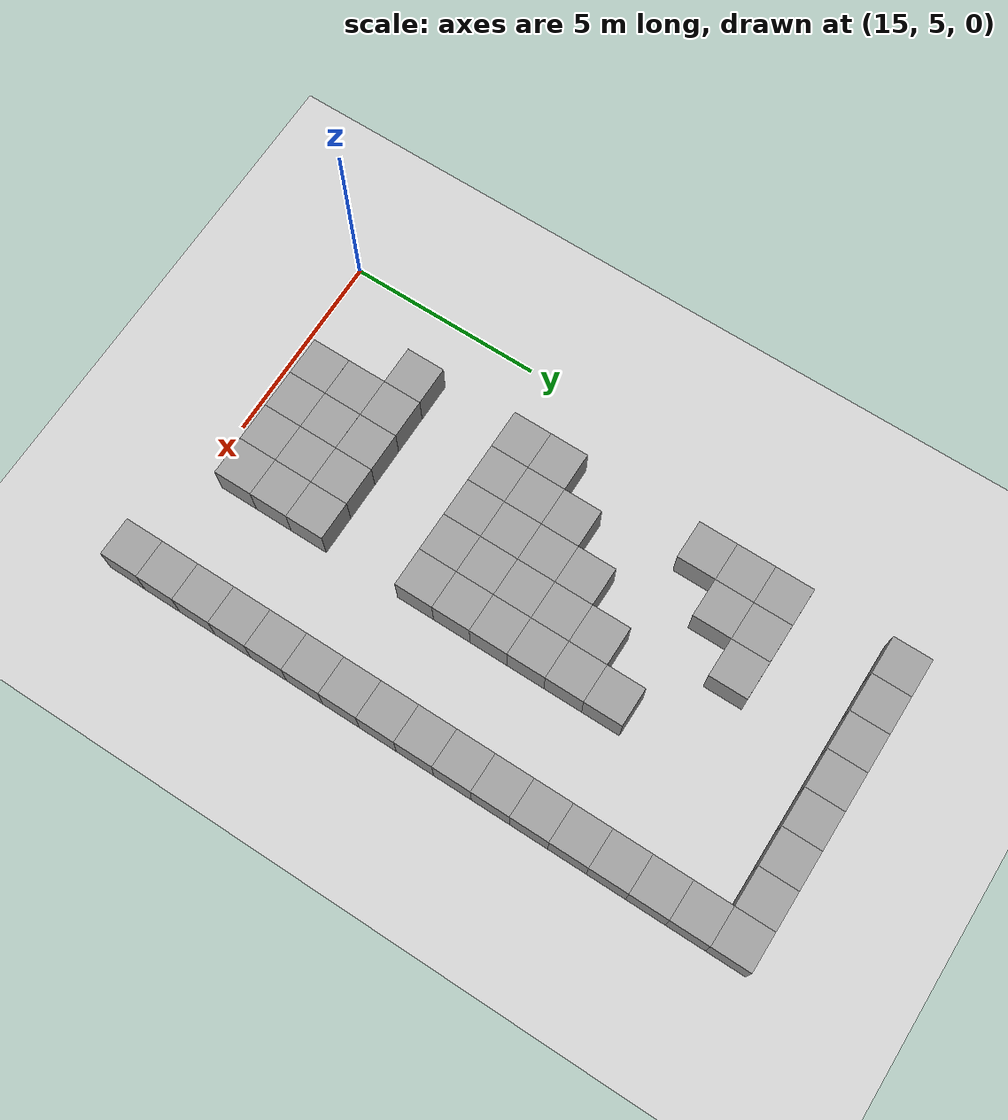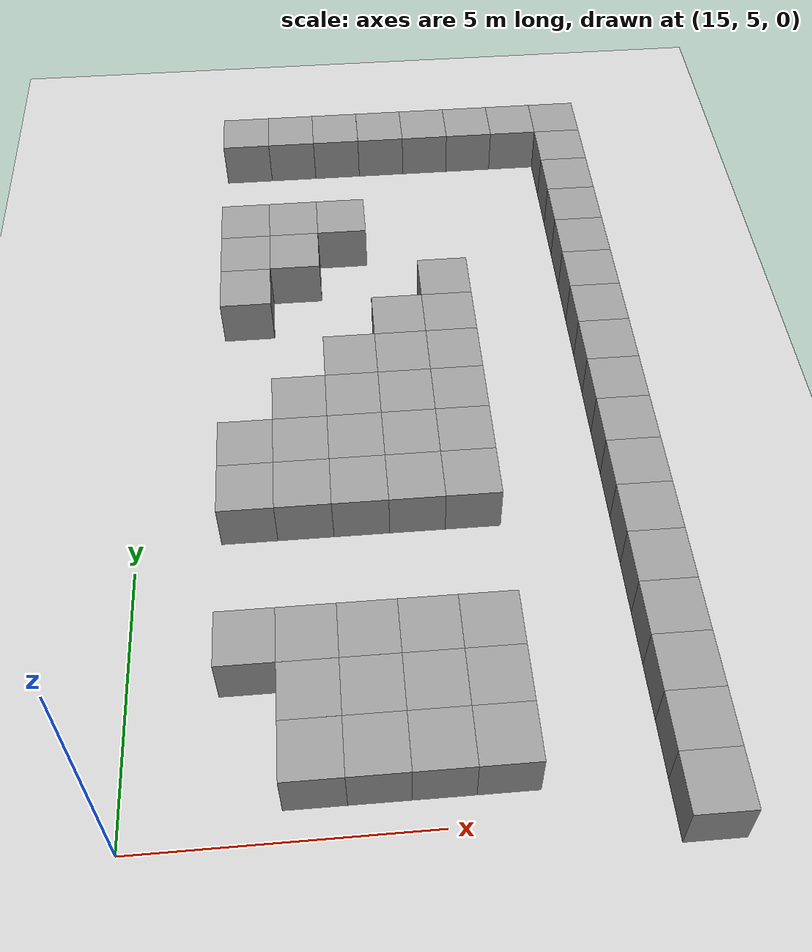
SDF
<sdf version="1.4">
 <world name="default">
  <model name="ground_plane">
   <static>1</static>
   <link name="link">
    <collision name="collision">
     <geometry><plane><normal>0 0 1</normal><size>100 100</size></plane></geometry>
     <surface><friction><ode><mu>100</mu><mu2>50</mu2></ode></friction></surface>
    </collision>
    <visual name="visual">
     <cast_shadows>0</cast_shadows>
     <geometry><plane><normal>0 0 1</normal><size>100 100</size></plane></geometry>
     <material>
      <script><uri>file://media/materials/scripts/gazebo.material</uri><name>Gazebo/Grey</name></script>
     </material>
    </visual>
    <velocity_decay><linear>0</linear><angular>0</angular></velocity_decay>
   </link>
  </model>
  <model name="unit_box_136">
   <pose>17 21 0.5 0 -0 3e-06</pose>
   <static>1</static>
   <link name="link">
    <inertial>
     <mass>1</mass>
     <inertia><ixx>1</ixx><ixy>0</ixy><ixz>0</ixz><iyy>1</iyy><iyz>0</iyz><izz>1</izz></inertia>
    </inertial>
    <collision name="collision"><geometry><box><size>1 1 1</size></box></geometry></collision>
    <visual name="visual">
     <geometry><box><size>1 1 1</size></box></geometry>
     <material>
      <script><uri>file://media/materials/scripts/gazebo.material</uri><name>Gazebo/Grey</name></script>
     </material>
    </visual>
    <velocity_decay><linear>0</linear><angular>0</angular></velocity_decay>
   </link>
   <static>1</static>
  </model>
  <model name="unit_box_137">
   <pose>18 21 0.5 0 -0 3e-06</pose>
   <static>1</static>
   <link name="link">
    <inertial>
     <mass>1</mass>
     <inertia><ixx>1</ixx><ixy>0</ixy><ixz>0</ixz><iyy>1</iyy><iyz>0</iyz><izz>1</izz></inertia>
    </inertial>
    <collision name="collision"><geometry><box><size>1 1 1</size></box></geometry></collision>
    <visual name="visual">
     <geometry><box><size>1 1 1</size></box></geometry>
     <material>
      <script><uri>file://media/materials/scripts/gazebo.material</uri><name>Gazebo/Grey</name></script>
     </material>
    </visual>
    <velocity_decay><linear>0</linear><angular>0</angular></velocity_decay>
   </link>
   <static>1</static>
  </model>
  <model name="unit_box_146">
   <pose>19 21 0.5 0 -0 3e-06</pose>
   <static>1</static>
   <link name="link">
    <inertial>
     <mass>1</mass>
     <inertia><ixx>1</ixx><ixy>0</ixy><ixz>0</ixz><iyy>1</iyy><iyz>0</iyz><izz>1</izz></inertia>
    </inertial>
    <collision name="collision"><geometry><box><size>1 1 1</size></box></geometry></collision>
    <visual name="visual">
     <geometry><box><size>1 1 1</size></box></geometry>
     <material>
      <script><uri>file://media/materials/scripts/gazebo.material</uri><name>Gazebo/Grey</name></script>
     </material>
    </visual>
    <velocity_decay><linear>0</linear><angular>0</angular></velocity_decay>
   </link>
   <static>1</static>
  </model>
  <model name="unit_box_147">
   <pose>20.0003 21 0.5 0 -0 1.4e-05</pose>
   <static>1</static>
   <link name="link">
    <inertial>
     <mass>1</mass>
     <inertia><ixx>1</ixx><ixy>0</ixy><ixz>0</ixz><iyy>1</iyy><iyz>0</iyz><izz>1</izz></inertia>
    </inertial>
    <collision name="collision"><geometry><box><size>1 1 1</size></box></geometry></collision>
    <visual name="visual">
     <geometry><box><size>1 1 1</size></box></geometry>
     <material>
      <script><uri>file://media/materials/scripts/gazebo.material</uri><name>Gazebo/Grey</name></script>
     </material>
    </visual>
    <velocity_decay><linear>0</linear><angular>0</angular></velocity_decay>
   </link>
   <static>1</static>
  </model>
  <model name="unit_box_148">
   <pose>21.0003 21 0.5 0 -0 3.3e-05</pose>
   <static>1</static>
   <link name="link">
    <inertial>
     <mass>1</mass>
     <inertia><ixx>1</ixx><ixy>0</ixy><ixz>0</ixz><iyy>1</iyy><iyz>0</iyz><izz>1</izz></inertia>
    </inertial>
    <collision name="collision"><geometry><box><size>1 1 1</size></box></geometry></collision>
    <visual name="visual">
     <geometry><box><size>1 1 1</size></box></geometry>
     <material>
      <script><uri>file://media/materials/scripts/gazebo.material</uri><name>Gazebo/Grey</name></script>
     </material>
    </visual>
    <velocity_decay><linear>0</linear><angular>0</angular></velocity_decay>
   </link>
   <static>1</static>
  </model>
  <model name="unit_box_150">
   <pose>22.0003 21.0001 0.5 0 -0 7.3e-05</pose>
   <static>1</static>
   <link name="link">
    <inertial>
     <mass>1</mass>
     <inertia><ixx>1</ixx><ixy>0</ixy><ixz>0</ixz><iyy>1</iyy><iyz>0</iyz><izz>1</izz></inertia>
    </inertial>
    <collision name="collision"><geometry><box><size>1 1 1</size></box></geometry></collision>
    <visual name="visual">
     <geometry><box><size>1 1 1</size></box></geometry>
     <material>
      <script><uri>file://media/materials/scripts/gazebo.material</uri><name>Gazebo/Grey</name></script>
     </material>
    </visual>
    <velocity_decay><linear>0</linear><angular>0</angular></velocity_decay>
   </link>
   <static>1</static>
  </model>
  <model name="unit_box_151">
   <pose>23.0004 21.0004 0.5 0 -0 0.000111</pose>
   <static>1</static>
   <link name="link">
    <inertial>
     <mass>1</mass>
     <inertia><ixx>1</ixx><ixy>0</ixy><ixz>0</ixz><iyy>1</iyy><iyz>0</iyz><izz>1</izz></inertia>
    </inertial>
    <collision name="collision"><geometry><box><size>1 1 1</size></box></geometry></collision>
    <visual name="visual">
     <geometry><box><size>1 1 1</size></box></geometry>
     <material>
      <script><uri>file://media/materials/scripts/gazebo.material</uri><name>Gazebo/Grey</name></script>
     </material>
    </visual>
    <velocity_decay><linear>0</linear><angular>0</angular></velocity_decay>
   </link>
   <static>1</static>
  </model>
  <model name="unit_box_152">
   <pose>24.0004 21.0005 0.5 0 -0 4.7e-05</pose>
   <static>1</static>
   <link name="link">
    <inertial>
     <mass>1</mass>
     <inertia><ixx>1</ixx><ixy>0</ixy><ixz>0</ixz><iyy>1</iyy><iyz>0</iyz><izz>1</izz></inertia>
    </inertial>
    <collision name="collision"><geometry><box><size>1 1 1</size></box></geometry></collision>
    <visual name="visual">
     <geometry><box><size>1 1 1</size></box></geometry>
     <material>
      <script><uri>file://media/materials/scripts/gazebo.material</uri><name>Gazebo/Grey</name></script>
     </material>
    </visual>
    <velocity_decay><linear>0</linear><angular>0</angular></velocity_decay>
   </link>
   <static>1</static>
  </model>
  <model name="unit_box_153">
   <pose>24.0001 20.0005 0.5 0 -0 2.5e-05</pose>
   <static>1</static>
   <link name="link">
    <inertial>
     <mass>1</mass>
     <inertia><ixx>1</ixx><ixy>0</ixy><ixz>0</ixz><iyy>1</iyy><iyz>0</iyz><izz>1</izz></inertia>
    </inertial>
    <collision name="collision"><geometry><box><size>1 1 1</size></box></geometry></collision>
    <visual name="visual">
     <geometry><box><size>1 1 1</size></box></geometry>
     <material>
      <script><uri>file://media/materials/scripts/gazebo.material</uri><name>Gazebo/Grey</name></script>
     </material>
    </visual>
    <velocity_decay><linear>0</linear><angular>0</angular></velocity_decay>
   </link>
   <static>1</static>
  </model>
  <model name="unit_box_154">
   <pose>24.0001 19.0005 0.5 0 -0 1.7e-05</pose>
   <static>1</static>
   <link name="link">
    <inertial>
     <mass>1</mass>
     <inertia><ixx>1</ixx><ixy>0</ixy><ixz>0</ixz><iyy>1</iyy><iyz>0</iyz><izz>1</izz></inertia>
    </inertial>
    <collision name="collision"><geometry><box><size>1 1 1</size></box></geometry></collision>
    <visual name="visual">
     <geometry><box><size>1 1 1</size></box></geometry>
     <material>
      <script><uri>file://media/materials/scripts/gazebo.material</uri><name>Gazebo/Grey</name></script>
     </material>
    </visual>
    <velocity_decay><linear>0</linear><angular>0</angular></velocity_decay>
   </link>
   <static>1</static>
  </model>
  <model name="unit_box_155">
   <pose>24.0001 18.0005 0.5 0 -0 1.3e-05</pose>
   <static>1</static>
   <link name="link">
    <inertial>
     <mass>1</mass>
     <inertia><ixx>1</ixx><ixy>0</ixy><ixz>0</ixz><iyy>1</iyy><iyz>0</iyz><izz>1</izz></inertia>
    </inertial>
    <collision name="collision"><geometry><box><size>1 1 1</size></box></geometry></collision>
    <visual name="visual">
     <geometry><box><size>1 1 1</size></box></geometry>
     <material>
      <script><uri>file://media/materials/scripts/gazebo.material</uri><name>Gazebo/Grey</name></script>
     </material>
    </visual>
    <velocity_decay><linear>0</linear><angular>0</angular></velocity_decay>
   </link>
   <static>1</static>
  </model>
  <model name="unit_box_156">
   <pose>24.0001 17.0005 0.5 0 -0 1.4e-05</pose>
   <static>1</static>
   <link name="link">
    <inertial>
     <mass>1</mass>
     <inertia><ixx>1</ixx><ixy>0</ixy><ixz>0</ixz><iyy>1</iyy><iyz>0</iyz><izz>1</izz></inertia>
    </inertial>
    <collision name="collision"><geometry><box><size>1 1 1</size></box></geometry></collision>
    <visual name="visual">
     <geometry><box><size>1 1 1</size></box></geometry>
     <material>
      <script><uri>file://media/materials/scripts/gazebo.material</uri><name>Gazebo/Grey</name></script>
     </material>
    </visual>
    <velocity_decay><linear>0</linear><angular>0</angular></velocity_decay>
   </link>
   <static>1</static>
  </model>
  <model name="unit_box_157">
   <pose>24.0002 16.0005 0.5 0 -0 1.5e-05</pose>
   <static>1</static>
   <link name="link">
    <inertial>
     <mass>1</mass>
     <inertia><ixx>1</ixx><ixy>0</ixy><ixz>0</ixz><iyy>1</iyy><iyz>0</iyz><izz>1</izz></inertia>
    </inertial>
    <collision name="collision"><geometry><box><size>1 1 1</size></box></geometry></collision>
    <visual name="visual">
     <geometry><box><size>1 1 1</size></box></geometry>
     <material>
      <script><uri>file://media/materials/scripts/gazebo.material</uri><name>Gazebo/Grey</name></script>
     </material>
    </visual>
    <velocity_decay><linear>0</linear><angular>0</angular></velocity_decay>
   </link>
   <static>1</static>
  </model>
  <model name="unit_box_158">
   <pose>24.0001 15.0005 0.5 0 -0 1.7e-05</pose>
   <static>1</static>
   <link name="link">
    <inertial>
     <mass>1</mass>
     <inertia><ixx>1</ixx><ixy>0</ixy><ixz>0</ixz><iyy>1</iyy><iyz>0</iyz><izz>1</izz></inertia>
    </inertial>
    <collision name="collision"><geometry><box><size>1 1 1</size></box></geometry></collision>
    <visual name="visual">
     <geometry><box><size>1 1 1</size></box></geometry>
     <material>
      <script><uri>file://media/materials/scripts/gazebo.material</uri><name>Gazebo/Grey</name></script>
     </material>
    </visual>
    <velocity_decay><linear>0</linear><angular>0</angular></velocity_decay>
   </link>
   <static>1</static>
  </model>
  <model name="unit_box_159">
   <pose>24 14.0005 0.5 0 -0 2e-05</pose>
   <static>1</static>
   <link name="link">
    <inertial>
     <mass>1</mass>
     <inertia><ixx>1</ixx><ixy>0</ixy><ixz>0</ixz><iyy>1</iyy><iyz>0</iyz><izz>1</izz></inertia>
    </inertial>
    <collision name="collision"><geometry><box><size>1 1 1</size></box></geometry></collision>
    <visual name="visual">
     <geometry><box><size>1 1 1</size></box></geometry>
     <material>
      <script><uri>file://media/materials/scripts/gazebo.material</uri><name>Gazebo/Grey</name></script>
     </material>
    </visual>
    <velocity_decay><linear>0</linear><angular>0</angular></velocity_decay>
   </link>
   <static>1</static>
  </model>
  <model name="unit_box_160">
   <pose>24 13.0005 0.5 0 -0 2.1e-05</pose>
   <static>1</static>
   <link name="link">
    <inertial>
     <mass>1</mass>
     <inertia><ixx>1</ixx><ixy>0</ixy><ixz>0</ixz><iyy>1</iyy><iyz>0</iyz><izz>1</izz></inertia>
    </inertial>
    <collision name="collision"><geometry><box><size>1 1 1</size></box></geometry></collision>
    <visual name="visual">
     <geometry><box><size>1 1 1</size></box></geometry>
     <material>
      <script><uri>file://media/materials/scripts/gazebo.material</uri><name>Gazebo/Grey</name></script>
     </material>
    </visual>
    <velocity_decay><linear>0</linear><angular>0</angular></velocity_decay>
   </link>
   <static>1</static>
  </model>
  <model name="unit_box_161">
   <pose>24.0001 12.0005 0.5 0 -0 2.2e-05</pose>
   <static>1</static>
   <link name="link">
    <inertial>
     <mass>1</mass>
     <inertia><ixx>1</ixx><ixy>0</ixy><ixz>0</ixz><iyy>1</iyy><iyz>0</iyz><izz>1</izz></inertia>
    </inertial>
    <collision name="collision"><geometry><box><size>1 1 1</size></box></geometry></collision>
    <visual name="visual">
     <geometry><box><size>1 1 1</size></box></geometry>
     <material>
      <script><uri>file://media/materials/scripts/gazebo.material</uri><name>Gazebo/Grey</name></script>
     </material>
    </visual>
    <velocity_decay><linear>0</linear><angular>0</angular></velocity_decay>
   </link>
   <static>1</static>
  </model>
  <model name="unit_box_162">
   <pose>24.0002 11.0004 0.5 0 -0 4e-05</pose>
   <static>1</static>
   <link name="link">
    <inertial>
     <mass>1</mass>
     <inertia><ixx>1</ixx><ixy>0</ixy><ixz>0</ixz><iyy>1</iyy><iyz>0</iyz><izz>1</izz></inertia>
    </inertial>
    <collision name="collision"><geometry><box><size>1 1 1</size></box></geometry></collision>
    <visual name="visual">
     <geometry><box><size>1 1 1</size></box></geometry>
     <material>
      <script><uri>file://media/materials/scripts/gazebo.material</uri><name>Gazebo/Grey</name></script>
     </material>
    </visual>
    <velocity_decay><linear>0</linear><angular>0</angular></velocity_decay>
   </link>
   <static>1</static>
  </model>
  <model name="unit_box_188">
   <pose>24.0001 10.0004 0.5 0 -0 3.9e-05</pose>
   <static>1</static>
   <link name="link">
    <inertial>
     <mass>1</mass>
     <inertia><ixx>1</ixx><ixy>0</ixy><ixz>0</ixz><iyy>1</iyy><iyz>0</iyz><izz>1</izz></inertia>
    </inertial>
    <collision name="collision"><geometry><box><size>1 1 1</size></box></geometry></collision>
    <visual name="visual">
     <geometry><box><size>1 1 1</size></box></geometry>
     <material>
      <script><uri>file://media/materials/scripts/gazebo.material</uri><name>Gazebo/Grey</name></script>
     </material>
    </visual>
    <velocity_decay><linear>0</linear><angular>0</angular></velocity_decay>
   </link>
   <static>1</static>
  </model>
  <model name="unit_box_189">
   <pose>24.0001 9.00043 0.5 0 -0 4.6e-05</pose>
   <static>1</static>
   <link name="link">
    <inertial>
     <mass>1</mass>
     <inertia><ixx>1</ixx><ixy>0</ixy><ixz>0</ixz><iyy>1</iyy><iyz>0</iyz><izz>1</izz></inertia>
    </inertial>
    <collision name="collision"><geometry><box><size>1 1 1</size></box></geometry></collision>
    <visual name="visual">
     <geometry><box><size>1 1 1</size></box></geometry>
     <material>
      <script><uri>file://media/materials/scripts/gazebo.material</uri><name>Gazebo/Grey</name></script>
     </material>
    </visual>
    <velocity_decay><linear>0</linear><angular>0</angular></velocity_decay>
   </link>
   <static>1</static>
  </model>
  <model name="unit_box_190">
   <pose>24.0001 8.00042 0.5 0 -0 3.9e-05</pose>
   <static>1</static>
   <link name="link">
    <inertial>
     <mass>1</mass>
     <inertia><ixx>1</ixx><ixy>0</ixy><ixz>0</ixz><iyy>1</iyy><iyz>0</iyz><izz>1</izz></inertia>
    </inertial>
    <collision name="collision"><geometry><box><size>1 1 1</size></box></geometry></collision>
    <visual name="visual">
     <geometry><box><size>1 1 1</size></box></geometry>
     <material>
      <script><uri>file://media/materials/scripts/gazebo.material</uri><name>Gazebo/Grey</name></script>
     </material>
    </visual>
    <velocity_decay><linear>0</linear><angular>0</angular></velocity_decay>
   </link>
   <static>1</static>
  </model>
  <model name="unit_box_191">
   <pose>24.0002 7.00042 0.5 0 -0 3.8e-05</pose>
   <static>1</static>
   <link name="link">
    <inertial>
     <mass>1</mass>
     <inertia><ixx>1</ixx><ixy>0</ixy><ixz>0</ixz><iyy>1</iyy><iyz>0</iyz><izz>1</izz></inertia>
    </inertial>
    <collision name="collision"><geometry><box><size>1 1 1</size></box></geometry></collision>
    <visual name="visual">
     <geometry><box><size>1 1 1</size></box></geometry>
     <material>
      <script><uri>file://media/materials/scripts/gazebo.material</uri><name>Gazebo/Grey</name></script>
     </material>
    </visual>
    <velocity_decay><linear>0</linear><angular>0</angular></velocity_decay>
   </link>
   <static>1</static>
  </model>
  <model name="unit_box_192">
   <pose>24.0014 6.00042 0.5 0 -0 3.8e-05</pose>
   <static>1</static>
   <link name="link">
    <inertial>
     <mass>1</mass>
     <inertia><ixx>1</ixx><ixy>0</ixy><ixz>0</ixz><iyy>1</iyy><iyz>0</iyz><izz>1</izz></inertia>
    </inertial>
    <collision name="collision"><geometry><box><size>1 1 1</size></box></geometry></collision>
    <visual name="visual">
     <geometry><box><size>1 1 1</size></box></geometry>
     <material>
      <script><uri>file://media/materials/scripts/gazebo.material</uri><name>Gazebo/Grey</name></script>
     </material>
    </visual>
    <velocity_decay><linear>0</linear><angular>0</angular></velocity_decay>
   </link>
   <static>1</static>
  </model>
  <model name="unit_box_194">
   <pose>24.0008 5.00042 0.5 0 -0 3.8e-05</pose>
   <static>1</static>
   <link name="link">
    <inertial>
     <mass>1</mass>
     <inertia><ixx>1</ixx><ixy>0</ixy><ixz>0</ixz><iyy>1</iyy><iyz>0</iyz><izz>1</izz></inertia>
    </inertial>
    <collision name="collision"><geometry><box><size>1 1 1</size></box></geometry></collision>
    <visual name="visual">
     <geometry><box><size>1 1 1</size></box></geometry>
     <material>
      <script><uri>file://media/materials/scripts/gazebo.material</uri><name>Gazebo/Grey</name></script>
     </material>
    </visual>
    <velocity_decay><linear>0</linear><angular>0</angular></velocity_decay>
   </link>
   <static>1</static>
  </model>
  <model name="unit_box_299">
   <pose>21 5.99999 0.5 0 0 -4e-06</pose>
   <link name="link">
    <inertial>
     <mass>1</mass>
     <inertia><ixx>1</ixx><ixy>0</ixy><ixz>0</ixz><iyy>1</iyy><iyz>0</iyz><izz>1</izz></inertia>
    </inertial>
    <collision name="collision"><geometry><box><size>1 1 1</size></box></geometry></collision>
    <visual name="visual">
     <geometry><box><size>1 1 1</size></box></geometry>
     <material>
      <script><uri>file://media/materials/scripts/gazebo.material</uri><name>Gazebo/Grey</name></script>
     </material>
    </visual>
    <velocity_decay><linear>0</linear><angular>0</angular></velocity_decay>
   </link>
   <static>1</static>
  </model>
  <model name="unit_box_300">
   <pose>21 7 0.5 0 0 -7e-06</pose>
   <link name="link">
    <inertial>
     <mass>1</mass>
     <inertia><ixx>1</ixx><ixy>0</ixy><ixz>0</ixz><iyy>1</iyy><iyz>0</iyz><izz>1</izz></inertia>
    </inertial>
    <collision name="collision"><geometry><box><size>1 1 1</size></box></geometry></collision>
    <visual name="visual">
     <geometry><box><size>1 1 1</size></box></geometry>
     <material>
      <script><uri>file://media/materials/scripts/gazebo.material</uri><name>Gazebo/Grey</name></script>
     </material>
    </visual>
    <velocity_decay><linear>0</linear><angular>0</angular></velocity_decay>
   </link>
   <static>1</static>
  </model>
  <model name="unit_box_301">
   <pose>21 8.00001 0.5 0 0 -3e-06</pose>
   <link name="link">
    <inertial>
     <mass>1</mass>
     <inertia><ixx>1</ixx><ixy>0</ixy><ixz>0</ixz><iyy>1</iyy><iyz>0</iyz><izz>1</izz></inertia>
    </inertial>
    <collision name="collision"><geometry><box><size>1 1 1</size></box></geometry></collision>
    <visual name="visual">
     <geometry><box><size>1 1 1</size></box></geometry>
     <material>
      <script><uri>file://media/materials/scripts/gazebo.material</uri><name>Gazebo/Grey</name></script>
     </material>
    </visual>
    <velocity_decay><linear>0</linear><angular>0</angular></velocity_decay>
   </link>
   <static>1</static>
  </model>
  <model name="unit_box_302">
   <pose>20 8.00001 0.5 0 0 -3e-06</pose>
   <link name="link">
    <inertial>
     <mass>1</mass>
     <inertia><ixx>1</ixx><ixy>0</ixy><ixz>0</ixz><iyy>1</iyy><iyz>0</iyz><izz>1</izz></inertia>
    </inertial>
    <collision name="collision"><geometry><box><size>1 1 1</size></box></geometry></collision>
    <visual name="visual">
     <geometry><box><size>1 1 1</size></box></geometry>
     <material>
      <script><uri>file://media/materials/scripts/gazebo.material</uri><name>Gazebo/Grey</name></script>
     </material>
    </visual>
    <velocity_decay><linear>0</linear><angular>0</angular></velocity_decay>
   </link>
   <static>1</static>
  </model>
  <model name="unit_box_303">
   <pose>20 7 0.5 0 0 -3e-06</pose>
   <link name="link">
    <inertial>
     <mass>1</mass>
     <inertia><ixx>1</ixx><ixy>0</ixy><ixz>0</ixz><iyy>1</iyy><iyz>0</iyz><izz>1</izz></inertia>
    </inertial>
    <collision name="collision"><geometry><box><size>1 1 1</size></box></geometry></collision>
    <visual name="visual">
     <geometry><box><size>1 1 1</size></box></geometry>
     <material>
      <script><uri>file://media/materials/scripts/gazebo.material</uri><name>Gazebo/Grey</name></script>
     </material>
    </visual>
    <velocity_decay><linear>0</linear><angular>0</angular></velocity_decay>
   </link>
   <static>1</static>
  </model>
  <model name="unit_box_304">
   <pose>20 6 0.5 0 0 -4e-06</pose>
   <link name="link">
    <inertial>
     <mass>1</mass>
     <inertia><ixx>1</ixx><ixy>0</ixy><ixz>0</ixz><iyy>1</iyy><iyz>0</iyz><izz>1</izz></inertia>
    </inertial>
    <collision name="collision"><geometry><box><size>1 1 1</size></box></geometry></collision>
    <visual name="visual">
     <geometry><box><size>1 1 1</size></box></geometry>
     <material>
      <script><uri>file://media/materials/scripts/gazebo.material</uri><name>Gazebo/Grey</name></script>
     </material>
    </visual>
    <velocity_decay><linear>0</linear><angular>0</angular></velocity_decay>
   </link>
   <static>1</static>
  </model>
  <model name="unit_box_305">
   <pose>19 6.00001 0.5 0 0 -1e-06</pose>
   <link name="link">
    <inertial>
     <mass>1</mass>
     <inertia><ixx>1</ixx><ixy>0</ixy><ixz>0</ixz><iyy>1</iyy><iyz>0</iyz><izz>1</izz></inertia>
    </inertial>
    <collision name="collision"><geometry><box><size>1 1 1</size></box></geometry></collision>
    <visual name="visual">
     <geometry><box><size>1 1 1</size></box></geometry>
     <material>
      <script><uri>file://media/materials/scripts/gazebo.material</uri><name>Gazebo/Grey</name></script>
     </material>
    </visual>
    <velocity_decay><linear>0</linear><angular>0</angular></velocity_decay>
   </link>
   <static>1</static>
  </model>
  <model name="unit_box_306">
   <pose>18 6 0.5 0 -0 0</pose>
   <link name="link">
    <inertial>
     <mass>1</mass>
     <inertia><ixx>1</ixx><ixy>0</ixy><ixz>0</ixz><iyy>1</iyy><iyz>0</iyz><izz>1</izz></inertia>
    </inertial>
    <collision name="collision"><geometry><box><size>1 1 1</size></box></geometry></collision>
    <visual name="visual">
     <geometry><box><size>1 1 1</size></box></geometry>
     <material>
      <script><uri>file://media/materials/scripts/gazebo.material</uri><name>Gazebo/Grey</name></script>
     </material>
    </visual>
    <velocity_decay><linear>0</linear><angular>0</angular></velocity_decay>
   </link>
   <static>1</static>
  </model>
  <model name="unit_box_378">
   <pose>17 16 0.5 0 -0 1e-06</pose>
   <link name="link">
    <inertial>
     <mass>1</mass>
     <inertia><ixx>1</ixx><ixy>0</ixy><ixz>0</ixz><iyy>1</iyy><iyz>0</iyz><izz>1</izz></inertia>
    </inertial>
    <collision name="collision"><geometry><box><size>1 1 1</size></box></geometry></collision>
    <visual name="visual">
     <geometry><box><size>1 1 1</size></box></geometry>
     <material>
      <script><uri>file://media/materials/scripts/gazebo.material</uri><name>Gazebo/Grey</name></script>
     </material>
    </visual>
    <velocity_decay><linear>0</linear><angular>0</angular></velocity_decay>
   </link>
   <static>1</static>
  </model>
  <model name="unit_box_379">
   <pose>17 17 0.5 0 -0 0</pose>
   <link name="link">
    <inertial>
     <mass>1</mass>
     <inertia><ixx>1</ixx><ixy>0</ixy><ixz>0</ixz><iyy>1</iyy><iyz>0</iyz><izz>1</izz></inertia>
    </inertial>
    <collision name="collision"><geometry><box><size>1 1 1</size></box></geometry></collision>
    <visual name="visual">
     <geometry><box><size>1 1 1</size></box></geometry>
     <material>
      <script><uri>file://media/materials/scripts/gazebo.material</uri><name>Gazebo/Grey</name></script>
     </material>
    </visual>
    <velocity_decay><linear>0</linear><angular>0</angular></velocity_decay>
   </link>
   <static>1</static>
  </model>
  <model name="unit_box_380">
   <pose>17 18 0.5 0 -0 2e-06</pose>
   <link name="link">
    <inertial>
     <mass>1</mass>
     <inertia><ixx>1</ixx><ixy>0</ixy><ixz>0</ixz><iyy>1</iyy><iyz>0</iyz><izz>1</izz></inertia>
    </inertial>
    <collision name="collision"><geometry><box><size>1 1 1</size></box></geometry></collision>
    <visual name="visual">
     <geometry><box><size>1 1 1</size></box></geometry>
     <material>
      <script><uri>file://media/materials/scripts/gazebo.material</uri><name>Gazebo/Grey</name></script>
     </material>
    </visual>
    <velocity_decay><linear>0</linear><angular>0</angular></velocity_decay>
   </link>
   <static>1</static>
  </model>
  <model name="unit_box_381">
   <pose>18 17 0.5 0 -0 4e-06</pose>
   <link name="link">
    <inertial>
     <mass>1</mass>
     <inertia><ixx>1</ixx><ixy>0</ixy><ixz>0</ixz><iyy>1</iyy><iyz>0</iyz><izz>1</izz></inertia>
    </inertial>
    <collision name="collision"><geometry><box><size>1 1 1</size></box></geometry></collision>
    <visual name="visual">
     <geometry><box><size>1 1 1</size></box></geometry>
     <material>
      <script><uri>file://media/materials/scripts/gazebo.material</uri><name>Gazebo/Grey</name></script>
     </material>
    </visual>
    <velocity_decay><linear>0</linear><angular>0</angular></velocity_decay>
   </link>
   <static>1</static>
  </model>
  <model name="unit_box_382">
   <pose>18 18 0.5 0 -1e-06 5e-06</pose>
   <link name="link">
    <inertial>
     <mass>1</mass>
     <inertia><ixx>1</ixx><ixy>0</ixy><ixz>0</ixz><iyy>1</iyy><iyz>0</iyz><izz>1</izz></inertia>
    </inertial>
    <collision name="collision"><geometry><box><size>1 1 1</size></box></geometry></collision>
    <visual name="visual">
     <geometry><box><size>1 1 1</size></box></geometry>
     <material>
      <script><uri>file://media/materials/scripts/gazebo.material</uri><name>Gazebo/Grey</name></script>
     </material>
    </visual>
    <velocity_decay><linear>0</linear><angular>0</angular></velocity_decay>
   </link>
   <static>1</static>
  </model>
  <model name="unit_box_383">
   <pose>19 18 0.5 0 -0 5e-06</pose>
   <link name="link">
    <inertial>
     <mass>1</mass>
     <inertia><ixx>1</ixx><ixy>0</ixy><ixz>0</ixz><iyy>1</iyy><iyz>0</iyz><izz>1</izz></inertia>
    </inertial>
    <collision name="collision"><geometry><box><size>1 1 1</size></box></geometry></collision>
    <visual name="visual">
     <geometry><box><size>1 1 1</size></box></geometry>
     <material>
      <script><uri>file://media/materials/scripts/gazebo.material</uri><name>Gazebo/Grey</name></script>
     </material>
    </visual>
    <velocity_decay><linear>0</linear><angular>0</angular></velocity_decay>
   </link>
   <static>1</static>
  </model>
  <model name="unit_box_384">
   <pose>21 16 0.5 0 -0 1e-06</pose>
   <link name="link">
    <inertial>
     <mass>1</mass>
     <inertia><ixx>1</ixx><ixy>0</ixy><ixz>0</ixz><iyy>1</iyy><iyz>0</iyz><izz>1</izz></inertia>
    </inertial>
    <collision name="collision"><geometry><box><size>1 1 1</size></box></geometry></collision>
    <visual name="visual">
     <geometry><box><size>1 1 1</size></box></geometry>
     <material>
      <script><uri>file://media/materials/scripts/gazebo.material</uri><name>Gazebo/Grey</name></script>
     </material>
    </visual>
    <velocity_decay><linear>0</linear><angular>0</angular></velocity_decay>
   </link>
   <static>1</static>
  </model>
  <model name="unit_box_385">
   <pose>21 15 0.5 0 -0 1e-06</pose>
   <link name="link">
    <inertial>
     <mass>1</mass>
     <inertia><ixx>1</ixx><ixy>0</ixy><ixz>0</ixz><iyy>1</iyy><iyz>0</iyz><izz>1</izz></inertia>
    </inertial>
    <collision name="collision"><geometry><box><size>1 1 1</size></box></geometry></collision>
    <visual name="visual">
     <geometry><box><size>1 1 1</size></box></geometry>
     <material>
      <script><uri>file://media/materials/scripts/gazebo.material</uri><name>Gazebo/Grey</name></script>
     </material>
    </visual>
    <velocity_decay><linear>0</linear><angular>0</angular></velocity_decay>
   </link>
   <static>1</static>
  </model>
  <model name="unit_box_386">
   <pose>21 14 0.5 0 -0 2e-06</pose>
   <link name="link">
    <inertial>
     <mass>1</mass>
     <inertia><ixx>1</ixx><ixy>0</ixy><ixz>0</ixz><iyy>1</iyy><iyz>0</iyz><izz>1</izz></inertia>
    </inertial>
    <collision name="collision"><geometry><box><size>1 1 1</size></box></geometry></collision>
    <visual name="visual">
     <geometry><box><size>1 1 1</size></box></geometry>
     <material>
      <script><uri>file://media/materials/scripts/gazebo.material</uri><name>Gazebo/Grey</name></script>
     </material>
    </visual>
    <velocity_decay><linear>0</linear><angular>0</angular></velocity_decay>
   </link>
   <static>1</static>
  </model>
  <model name="unit_box_387">
   <pose>21 13 0.5 0 -0 1e-06</pose>
   <link name="link">
    <inertial>
     <mass>1</mass>
     <inertia><ixx>1</ixx><ixy>0</ixy><ixz>0</ixz><iyy>1</iyy><iyz>0</iyz><izz>1</izz></inertia>
    </inertial>
    <collision name="collision"><geometry><box><size>1 1 1</size></box></geometry></collision>
    <visual name="visual">
     <geometry><box><size>1 1 1</size></box></geometry>
     <material>
      <script><uri>file://media/materials/scripts/gazebo.material</uri><name>Gazebo/Grey</name></script>
     </material>
    </visual>
    <velocity_decay><linear>0</linear><angular>0</angular></velocity_decay>
   </link>
   <static>1</static>
  </model>
  <model name="unit_box_388">
   <pose>21 12 0.5 0 -0 3e-06</pose>
   <link name="link">
    <inertial>
     <mass>1</mass>
     <inertia><ixx>1</ixx><ixy>0</ixy><ixz>0</ixz><iyy>1</iyy><iyz>0</iyz><izz>1</izz></inertia>
    </inertial>
    <collision name="collision"><geometry><box><size>1 1 1</size></box></geometry></collision>
    <visual name="visual">
     <geometry><box><size>1 1 1</size></box></geometry>
     <material>
      <script><uri>file://media/materials/scripts/gazebo.material</uri><name>Gazebo/Grey</name></script>
     </material>
    </visual>
    <velocity_decay><linear>0</linear><angular>0</angular></velocity_decay>
   </link>
   <static>1</static>
  </model>
  <model name="unit_box_389">
   <pose>21 11 0.5 0 -0 3e-06</pose>
   <link name="link">
    <inertial>
     <mass>1</mass>
     <inertia><ixx>1</ixx><ixy>0</ixy><ixz>0</ixz><iyy>1</iyy><iyz>0</iyz><izz>1</izz></inertia>
    </inertial>
    <collision name="collision"><geometry><box><size>1 1 1</size></box></geometry></collision>
    <visual name="visual">
     <geometry><box><size>1 1 1</size></box></geometry>
     <material>
      <script><uri>file://media/materials/scripts/gazebo.material</uri><name>Gazebo/Grey</name></script>
     </material>
    </visual>
    <velocity_decay><linear>0</linear><angular>0</angular></velocity_decay>
   </link>
   <static>1</static>
  </model>
  <model name="unit_box_390">
   <pose>20 11 0.5 0 -0 3e-06</pose>
   <link name="link">
    <inertial>
     <mass>1</mass>
     <inertia><ixx>1</ixx><ixy>0</ixy><ixz>0</ixz><iyy>1</iyy><iyz>0</iyz><izz>1</izz></inertia>
    </inertial>
    <collision name="collision"><geometry><box><size>1 1 1</size></box></geometry></collision>
    <visual name="visual">
     <geometry><box><size>1 1 1</size></box></geometry>
     <material>
      <script><uri>file://media/materials/scripts/gazebo.material</uri><name>Gazebo/Grey</name></script>
     </material>
    </visual>
    <velocity_decay><linear>0</linear><angular>0</angular></velocity_decay>
   </link>
   <static>1</static>
  </model>
  <model name="unit_box_391">
   <pose>20 12 0.5 0 -0 3e-06</pose>
   <link name="link">
    <inertial>
     <mass>1</mass>
     <inertia><ixx>1</ixx><ixy>0</ixy><ixz>0</ixz><iyy>1</iyy><iyz>0</iyz><izz>1</izz></inertia>
    </inertial>
    <collision name="collision"><geometry><box><size>1 1 1</size></box></geometry></collision>
    <visual name="visual">
     <geometry><box><size>1 1 1</size></box></geometry>
     <material>
      <script><uri>file://media/materials/scripts/gazebo.material</uri><name>Gazebo/Grey</name></script>
     </material>
    </visual>
    <velocity_decay><linear>0</linear><angular>0</angular></velocity_decay>
   </link>
   <static>1</static>
  </model>
  <model name="unit_box_392">
   <pose>20 13 0.5 0 -0 1e-06</pose>
   <link name="link">
    <inertial>
     <mass>1</mass>
     <inertia><ixx>1</ixx><ixy>0</ixy><ixz>0</ixz><iyy>1</iyy><iyz>0</iyz><izz>1</izz></inertia>
    </inertial>
    <collision name="collision"><geometry><box><size>1 1 1</size></box></geometry></collision>
    <visual name="visual">
     <geometry><box><size>1 1 1</size></box></geometry>
     <material>
      <script><uri>file://media/materials/scripts/gazebo.material</uri><name>Gazebo/Grey</name></script>
     </material>
    </visual>
    <velocity_decay><linear>0</linear><angular>0</angular></velocity_decay>
   </link>
   <static>1</static>
  </model>
  <model name="unit_box_393">
   <pose>20 14 0.5 0 -0 1e-06</pose>
   <link name="link">
    <inertial>
     <mass>1</mass>
     <inertia><ixx>1</ixx><ixy>0</ixy><ixz>0</ixz><iyy>1</iyy><iyz>0</iyz><izz>1</izz></inertia>
    </inertial>
    <collision name="collision"><geometry><box><size>1 1 1</size></box></geometry></collision>
    <visual name="visual">
     <geometry><box><size>1 1 1</size></box></geometry>
     <material>
      <script><uri>file://media/materials/scripts/gazebo.material</uri><name>Gazebo/Grey</name></script>
     </material>
    </visual>
    <velocity_decay><linear>0</linear><angular>0</angular></velocity_decay>
   </link>
   <static>1</static>
  </model>
  <model name="unit_box_394">
   <pose>20 15 0.5 0 -0 1e-06</pose>
   <link name="link">
    <inertial>
     <mass>1</mass>
     <inertia><ixx>1</ixx><ixy>0</ixy><ixz>0</ixz><iyy>1</iyy><iyz>0</iyz><izz>1</izz></inertia>
    </inertial>
    <collision name="collision"><geometry><box><size>1 1 1</size></box></geometry></collision>
    <visual name="visual">
     <geometry><box><size>1 1 1</size></box></geometry>
     <material>
      <script><uri>file://media/materials/scripts/gazebo.material</uri><name>Gazebo/Grey</name></script>
     </material>
    </visual>
    <velocity_decay><linear>0</linear><angular>0</angular></velocity_decay>
   </link>
   <static>1</static>
  </model>
  <model name="unit_box_395">
   <pose>19 14 0.5 0 -0 5e-06</pose>
   <link name="link">
    <inertial>
     <mass>1</mass>
     <inertia><ixx>1</ixx><ixy>0</ixy><ixz>0</ixz><iyy>1</iyy><iyz>0</iyz><izz>1</izz></inertia>
    </inertial>
    <collision name="collision"><geometry><box><size>1 1 1</size></box></geometry></collision>
    <visual name="visual">
     <geometry><box><size>1 1 1</size></box></geometry>
     <material>
      <script><uri>file://media/materials/scripts/gazebo.material</uri><name>Gazebo/Grey</name></script>
     </material>
    </visual>
    <velocity_decay><linear>0</linear><angular>0</angular></velocity_decay>
   </link>
   <static>1</static>
  </model>
  <model name="unit_box_396">
   <pose>19 13 0.5 0 -0 2e-06</pose>
   <link name="link">
    <inertial>
     <mass>1</mass>
     <inertia><ixx>1</ixx><ixy>0</ixy><ixz>0</ixz><iyy>1</iyy><iyz>0</iyz><izz>1</izz></inertia>
    </inertial>
    <collision name="collision"><geometry><box><size>1 1 1</size></box></geometry></collision>
    <visual name="visual">
     <geometry><box><size>1 1 1</size></box></geometry>
     <material>
      <script><uri>file://media/materials/scripts/gazebo.material</uri><name>Gazebo/Grey</name></script>
     </material>
    </visual>
    <velocity_decay><linear>0</linear><angular>0</angular></velocity_decay>
   </link>
   <static>1</static>
  </model>
  <model name="unit_box_397">
   <pose>19 12 0.5 0 -0 1e-06</pose>
   <link name="link">
    <inertial>
     <mass>1</mass>
     <inertia><ixx>1</ixx><ixy>0</ixy><ixz>0</ixz><iyy>1</iyy><iyz>0</iyz><izz>1</izz></inertia>
    </inertial>
    <collision name="collision"><geometry><box><size>1 1 1</size></box></geometry></collision>
    <visual name="visual">
     <geometry><box><size>1 1 1</size></box></geometry>
     <material>
      <script><uri>file://media/materials/scripts/gazebo.material</uri><name>Gazebo/Grey</name></script>
     </material>
    </visual>
    <velocity_decay><linear>0</linear><angular>0</angular></velocity_decay>
   </link>
   <static>1</static>
  </model>
  <model name="unit_box_398">
   <pose>19 11 0.5 0 -0 2e-06</pose>
   <link name="link">
    <inertial>
     <mass>1</mass>
     <inertia><ixx>1</ixx><ixy>0</ixy><ixz>0</ixz><iyy>1</iyy><iyz>0</iyz><izz>1</izz></inertia>
    </inertial>
    <collision name="collision"><geometry><box><size>1 1 1</size></box></geometry></collision>
    <visual name="visual">
     <geometry><box><size>1 1 1</size></box></geometry>
     <material>
      <script><uri>file://media/materials/scripts/gazebo.material</uri><name>Gazebo/Grey</name></script>
     </material>
    </visual>
    <velocity_decay><linear>0</linear><angular>0</angular></velocity_decay>
   </link>
   <static>1</static>
  </model>
  <model name="unit_box_399">
   <pose>18 13 0.5 0 -0 2e-06</pose>
   <link name="link">
    <inertial>
     <mass>1</mass>
     <inertia><ixx>1</ixx><ixy>0</ixy><ixz>0</ixz><iyy>1</iyy><iyz>0</iyz><izz>1</izz></inertia>
    </inertial>
    <collision name="collision"><geometry><box><size>1 1 1</size></box></geometry></collision>
    <visual name="visual">
     <geometry><box><size>1 1 1</size></box></geometry>
     <material>
      <script><uri>file://media/materials/scripts/gazebo.material</uri><name>Gazebo/Grey</name></script>
     </material>
    </visual>
    <velocity_decay><linear>0</linear><angular>0</angular></velocity_decay>
   </link>
   <static>1</static>
  </model>
  <model name="unit_box_400">
   <pose>18 12 0.5 0 0 -1e-06</pose>
   <link name="link">
    <inertial>
     <mass>1</mass>
     <inertia><ixx>1</ixx><ixy>0</ixy><ixz>0</ixz><iyy>1</iyy><iyz>0</iyz><izz>1</izz></inertia>
    </inertial>
    <collision name="collision"><geometry><box><size>1 1 1</size></box></geometry></collision>
    <visual name="visual">
     <geometry><box><size>1 1 1</size></box></geometry>
     <material>
      <script><uri>file://media/materials/scripts/gazebo.material</uri><name>Gazebo/Grey</name></script>
     </material>
    </visual>
    <velocity_decay><linear>0</linear><angular>0</angular></velocity_decay>
   </link>
   <static>1</static>
  </model>
  <model name="unit_box_401">
   <pose>18 11 0.5 0 -0 0</pose>
   <link name="link">
    <inertial>
     <mass>1</mass>
     <inertia><ixx>1</ixx><ixy>0</ixy><ixz>0</ixz><iyy>1</iyy><iyz>0</iyz><izz>1</izz></inertia>
    </inertial>
    <collision name="collision"><geometry><box><size>1 1 1</size></box></geometry></collision>
    <visual name="visual">
     <geometry><box><size>1 1 1</size></box></geometry>
     <material>
      <script><uri>file://media/materials/scripts/gazebo.material</uri><name>Gazebo/Grey</name></script>
     </material>
    </visual>
    <velocity_decay><linear>0</linear><angular>0</angular></velocity_decay>
   </link>
   <static>1</static>
  </model>
  <model name="unit_box_402">
   <pose>17 12 0.5 0 -0 0</pose>
   <link name="link">
    <inertial>
     <mass>1</mass>
     <inertia><ixx>1</ixx><ixy>0</ixy><ixz>0</ixz><iyy>1</iyy><iyz>0</iyz><izz>1</izz></inertia>
    </inertial>
    <collision name="collision"><geometry><box><size>1 1 1</size></box></geometry></collision>
    <visual name="visual">
     <geometry><box><size>1 1 1</size></box></geometry>
     <material>
      <script><uri>file://media/materials/scripts/gazebo.material</uri><name>Gazebo/Grey</name></script>
     </material>
    </visual>
    <velocity_decay><linear>0</linear><angular>0</angular></velocity_decay>
   </link>
   <static>1</static>
  </model>
  <model name="unit_box_403">
   <pose>17 11 0.5 0 -0 0</pose>
   <link name="link">
    <inertial>
     <mass>1</mass>
     <inertia><ixx>1</ixx><ixy>0</ixy><ixz>0</ixz><iyy>1</iyy><iyz>0</iyz><izz>1</izz></inertia>
    </inertial>
    <collision name="collision"><geometry><box><size>1 1 1</size></box></geometry></collision>
    <visual name="visual">
     <geometry><box><size>1 1 1</size></box></geometry>
     <material>
      <script><uri>file://media/materials/scripts/gazebo.material</uri><name>Gazebo/Grey</name></script>
     </material>
    </visual>
    <velocity_decay><linear>0</linear><angular>0</angular></velocity_decay>
   </link>
   <static>1</static>
  </model>
  <model name="unit_box_9">
   <pose>18 7.00007 0.499994 -1e-06 4.03897e-28 -3e-06</pose>
   <link name="link">
    <inertial>
     <mass>1</mass>
     <inertia><ixx>1</ixx><ixy>0</ixy><ixz>0</ixz><iyy>1</iyy><iyz>0</iyz><izz>1</izz></inertia>
    </inertial>
    <collision name="collision"><geometry><box><size>1 1 1</size></box></geometry></collision>
    <visual name="visual">
     <geometry><box><size>1 1 1</size></box></geometry>
     <material>
      <script><uri>file://media/materials/scripts/gazebo.material</uri><name>Gazebo/Grey</name></script>
     </material>
    </visual>
    <velocity_decay><linear>0</linear><angular>0</angular></velocity_decay>
   </link>
   <static>1</static>
  </model>
  <model name="unit_box_10">
   <pose>19 7.00001 0.5 -4.03897e-28 -1e-06 -3e-06</pose>
   <link name="link">
    <inertial>
     <mass>1</mass>
     <inertia><ixx>1</ixx><ixy>0</ixy><ixz>0</ixz><iyy>1</iyy><iyz>0</iyz><izz>1</izz></inertia>
    </inertial>
    <collision name="collision"><geometry><box><size>1 1 1</size></box></geometry></collision>
    <visual name="visual">
     <geometry><box><size>1 1 1</size></box></geometry>
     <material>
      <script><uri>file://media/materials/scripts/gazebo.material</uri><name>Gazebo/Grey</name></script>
     </material>
    </visual>
    <velocity_decay><linear>0</linear><angular>0</angular></velocity_decay>
   </link>
   <static>1</static>
  </model>
  <model name="unit_box_11">
   <pose>17 8.00023 0.5 0 0 -4e-06</pose>
   <link name="link">
    <inertial>
     <mass>1</mass>
     <inertia><ixx>1</ixx><ixy>0</ixy><ixz>0</ixz><iyy>1</iyy><iyz>0</iyz><izz>1</izz></inertia>
    </inertial>
    <collision name="collision"><geometry><box><size>1 1 1</size></box></geometry></collision>
    <visual name="visual">
     <geometry><box><size>1 1 1</size></box></geometry>
     <material>
      <script><uri>file://media/materials/scripts/gazebo.material</uri><name>Gazebo/Grey</name></script>
     </material>
    </visual>
    <velocity_decay><linear>0</linear><angular>0</angular></velocity_decay>
   </link>
   <static>1</static>
  </model>
  <model name="unit_box_12">
   <pose>18 8.00025 0.5 0 0 -4e-06</pose>
   <link name="link">
    <inertial>
     <mass>1</mass>
     <inertia><ixx>1</ixx><ixy>0</ixy><ixz>0</ixz><iyy>1</iyy><iyz>0</iyz><izz>1</izz></inertia>
    </inertial>
    <collision name="collision"><geometry><box><size>1 1 1</size></box></geometry></collision>
    <visual name="visual">
     <geometry><box><size>1 1 1</size></box></geometry>
     <material>
      <script><uri>file://media/materials/scripts/gazebo.material</uri><name>Gazebo/Grey</name></script>
     </material>
    </visual>
    <velocity_decay><linear>0</linear><angular>0</angular></velocity_decay>
   </link>
   <static>1</static>
  </model>
  <model name="unit_box_13">
   <pose>19 8.00017 0.5 0 0 -3e-06</pose>
   <link name="link">
    <inertial>
     <mass>1</mass>
     <inertia><ixx>1</ixx><ixy>0</ixy><ixz>0</ixz><iyy>1</iyy><iyz>0</iyz><izz>1</izz></inertia>
    </inertial>
    <collision name="collision"><geometry><box><size>1 1 1</size></box></geometry></collision>
    <visual name="visual">
     <geometry><box><size>1 1 1</size></box></geometry>
     <material>
      <script><uri>file://media/materials/scripts/gazebo.material</uri><name>Gazebo/Grey</name></script>
     </material>
    </visual>
    <velocity_decay><linear>0</linear><angular>0</angular></velocity_decay>
   </link>
   <static>1</static>
  </model>
 </world>
</sdf>
